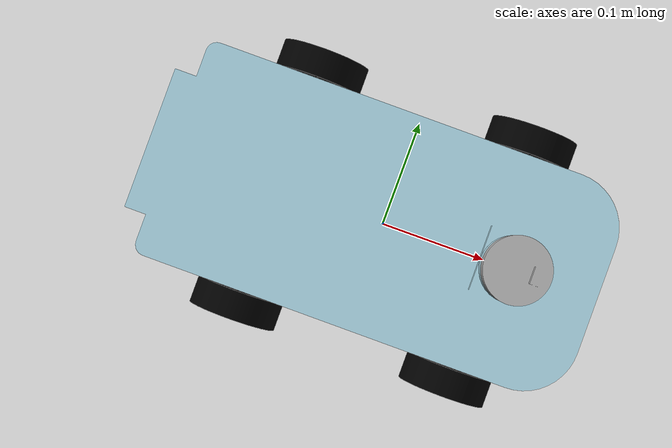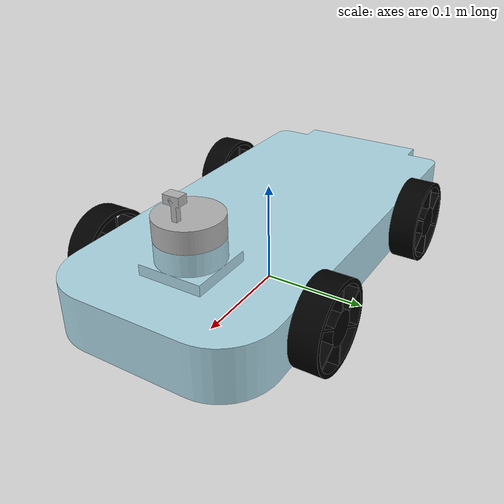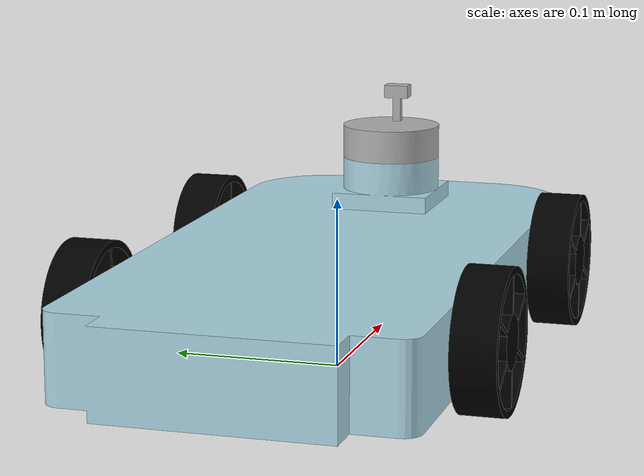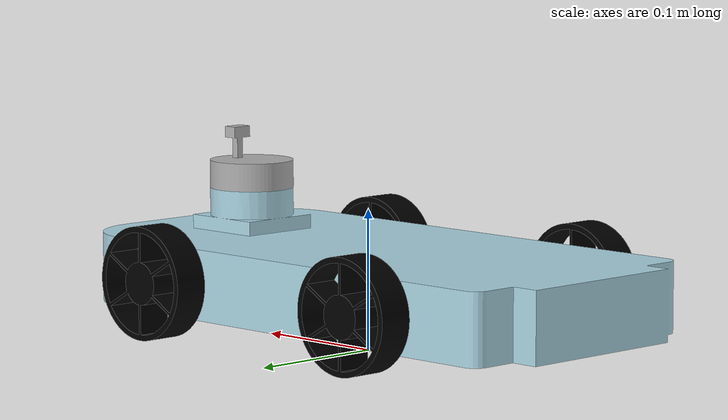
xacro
<?xml version="1.0" ?>
<robot name="SimpleCarRobot" xmlns:xacro="http://www.ros.org/wiki/xacro">

<xacro:include filename="$(find SimpleCarRobot_description)/urdf/materials.xacro" />
<xacro:include filename="$(find SimpleCarRobot_description)/urdf/SimpleCarRobot.trans" />
<xacro:include filename="$(find SimpleCarRobot_description)/urdf/SimpleCarRobot.gazebo" />

<link name="base_link">
  <inertial>
    <origin xyz="-0.006225642035045943 0.0 0.05087125307915337" rpy="0 0 0"/>
    <mass value="4.409937301003005"/>
    <inertia ixx="0.014864" iyy="0.062745" izz="0.075501" ixy="0.0" iyz="0.0" ixz="-0.000485"/>
  </inertial>
  <visual>
    <origin xyz="0 0 0" rpy="0 0 0"/>
    <geometry>
      <mesh filename="package://SimpleCarRobot_description/meshes/base_link.stl" scale="0.001 0.001 0.001"/>
    </geometry>
    <material name="blue"/>
  </visual>
  <collision>
    <origin xyz="0 0 0" rpy="0 0 0"/>
    <geometry>
      <mesh filename="package://SimpleCarRobot_description/meshes/base_link.stl" scale="0.001 0.001 0.001"/>
    </geometry>
  </collision>
</link>

<link name="front_right_wheel_1">
  <inertial>
    <origin xyz="8.326672684688674e-17 -0.014111456121422603 4.163336342344337e-17" rpy="0 0 0"/>
    <mass value="0.04588438904615645"/>
    <inertia ixx="2.2e-05" iyy="3.8e-05" izz="2.2e-05" ixy="-0.0" iyz="-0.0" ixz="-0.0"/>
  </inertial>
  <visual>
    <origin xyz="-0.1 0.098 -0.05" rpy="0 0 0"/>
    <geometry>
      <mesh filename="package://SimpleCarRobot_description/meshes/front_right_wheel_1.stl" scale="0.001 0.001 0.001"/>
    </geometry>
    <material name="black"/>
  </visual>
  <collision>
    <origin xyz="-0.1 0.098 -0.05" rpy="0 0 0"/>
    <geometry>
      <mesh filename="package://SimpleCarRobot_description/meshes/front_right_wheel_1.stl" scale="0.001 0.001 0.001"/>
    </geometry>
  </collision>
</link>

<link name="back_right_wheel_1">
  <inertial>
    <origin xyz="-8.326672684688674e-17 -0.014113126073852914 0.0" rpy="0 0 0"/>
    <mass value="0.045878545683820826"/>
    <inertia ixx="2.2e-05" iyy="3.8e-05" izz="2.2e-05" ixy="0.0" iyz="-0.0" ixz="0.0"/>
  </inertial>
  <visual>
    <origin xyz="0.1 0.098 -0.05" rpy="0 0 0"/>
    <geometry>
      <mesh filename="package://SimpleCarRobot_description/meshes/back_right_wheel_1.stl" scale="0.001 0.001 0.001"/>
    </geometry>
    <material name="black"/>
  </visual>
  <collision>
    <origin xyz="0.1 0.098 -0.05" rpy="0 0 0"/>
    <geometry>
      <mesh filename="package://SimpleCarRobot_description/meshes/back_right_wheel_1.stl" scale="0.001 0.001 0.001"/>
    </geometry>
  </collision>
</link>

<link name="back_left_wheel_1">
  <inertial>
    <origin xyz="0.0 0.014111456121422561 6.245004513516506e-17" rpy="0 0 0"/>
    <mass value="0.045884389046156444"/>
    <inertia ixx="2.2e-05" iyy="3.8e-05" izz="2.2e-05" ixy="0.0" iyz="0.0" ixz="0.0"/>
  </inertial>
  <visual>
    <origin xyz="0.1 -0.098 -0.05" rpy="0 0 0"/>
    <geometry>
      <mesh filename="package://SimpleCarRobot_description/meshes/back_left_wheel_1.stl" scale="0.001 0.001 0.001"/>
    </geometry>
    <material name="black"/>
  </visual>
  <collision>
    <origin xyz="0.1 -0.098 -0.05" rpy="0 0 0"/>
    <geometry>
      <mesh filename="package://SimpleCarRobot_description/meshes/back_left_wheel_1.stl" scale="0.001 0.001 0.001"/>
    </geometry>
  </collision>
</link>

<link name="front_left_wheel_1">
  <inertial>
    <origin xyz="-4.163336342344337e-17 0.014111456121422561 6.938893903907228e-18" rpy="0 0 0"/>
    <mass value="0.04588438904615646"/>
    <inertia ixx="2.2e-05" iyy="3.8e-05" izz="2.2e-05" ixy="0.0" iyz="0.0" ixz="-0.0"/>
  </inertial>
  <visual>
    <origin xyz="-0.1 -0.098 -0.05" rpy="0 0 0"/>
    <geometry>
      <mesh filename="package://SimpleCarRobot_description/meshes/front_left_wheel_1.stl" scale="0.001 0.001 0.001"/>
    </geometry>
    <material name="black"/>
  </visual>
  <collision>
    <origin xyz="-0.1 -0.098 -0.05" rpy="0 0 0"/>
    <geometry>
      <mesh filename="package://SimpleCarRobot_description/meshes/front_left_wheel_1.stl" scale="0.001 0.001 0.001"/>
    </geometry>
  </collision>
</link>

<link name="lidar_1">
  <inertial>
    <origin xyz="0.00039627994015795087 2.544123931108333e-16 0.010696139706805982" rpy="0 0 0"/>
    <mass value="0.06157737068733859"/>
    <inertia ixx="1.7e-05" iyy="1.7e-05" izz="2.7e-05" ixy="-0.0" iyz="-0.0" ixz="-1e-06"/>
  </inertial>
  <visual>
    <origin xyz="-0.12 -0.0 -0.105" rpy="0 0 0"/>
    <geometry>
      <mesh filename="package://SimpleCarRobot_description/meshes/lidar_1.stl" scale="0.001 0.001 0.001"/>
    </geometry>
    <material name="silver"/>
  </visual>
  <collision>
    <origin xyz="-0.12 -0.0 -0.105" rpy="0 0 0"/>
    <geometry>
      <mesh filename="package://SimpleCarRobot_description/meshes/lidar_1.stl" scale="0.001 0.001 0.001"/>
    </geometry>
  </collision>
</link>

<joint name="front_right_wheel_rev" type="continuous">
  <origin xyz="0.1 -0.098 0.05" rpy="0 0 0"/>
  <parent link="base_link"/>
  <child link="front_right_wheel_1"/>
  <axis xyz="0.0 1.0 0.0"/>
</joint>

<joint name="back_right_wheel_rev" type="continuous">
  <origin xyz="-0.1 -0.098 0.05" rpy="0 0 0"/>
  <parent link="base_link"/>
  <child link="back_right_wheel_1"/>
  <axis xyz="0.0 1.0 0.0"/>
</joint>

<joint name="back_left_wheel_rev" type="continuous">
  <origin xyz="-0.1 0.098 0.05" rpy="0 0 0"/>
  <parent link="base_link"/>
  <child link="back_left_wheel_1"/>
  <axis xyz="0.0 1.0 0.0"/>
</joint>

<joint name="front_left_wheel_rev" type="continuous">
  <origin xyz="0.1 0.098 0.05" rpy="0 0 0"/>
  <parent link="base_link"/>
  <child link="front_left_wheel_1"/>
  <axis xyz="0.0 1.0 0.0"/>
</joint>

<joint name="lidar_rev" type="fixed">
  <origin xyz="0.12 0.0 0.105" rpy="0 0 0"/>
  <parent link="base_link"/>
  <child link="lidar_1"/>
</joint>

</robot>

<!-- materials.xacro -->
<robot name="SimpleCarRobot" xmlns:xacro="http://www.ros.org/wiki/xacro" >

  <material name="silver">
    <color rgba="0.700 0.700 0.700 1.000" />
  </material>
  <material name="red">
    <color rgba="1.000 0.000 0.000 1.000" />
  </material>
  <material name="blue">
    <color rgba="0.678 0.847 0.902 1.000" />
  </material>
  <material name="green">
    <color rgba="0.000 1.000 0.000 1.000" />
  </material>
  <material name="yellow">
    <color rgba="1.000 1.000 0.000 1.000" />
  </material>
  <material name="orange">
    <color rgba="1.000 0.647 0.000 1.000" />
  </material>
  <material name="purple">
    <color rgba="0.502 0.000 0.502 1.000" />
  </material>
  <material name="pink">
    <color rgba="1.000 0.753 0.796 1.000" />
  </material>
  <material name="cyan">
    <color rgba="0.000 1.000 1.000 1.000" />
  </material>
  <material name="brown">
    <color rgba="0.647 0.165 0.165 1.000" />
  </material>
  <material name="black">
    <color rgba="0.000 0.000 0.000 1.000" />
  </material>

</robot>

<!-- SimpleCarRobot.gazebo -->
<robot name="SimpleCarRobot" xmlns:xacro="http://www.ros.org/wiki/xacro" >

  <xacro:property name="body_color" value="Gazebo/Turquoise" />
  <xacro:property name="lidar_color" value="Gazebo/DarkGrey" />
  <xacro:property name="wheel_color" value="Gazebo/Black" />

<gazebo>
    <plugin name="control" filename="libgazebo_ros_control.so" />
</gazebo>

<gazebo reference="base_link">
  <material>${body_color}</material>
  <mu1>0.2</mu1>
  <mu2>0.2</mu2>
  <selfCollide>true</selfCollide>
  <gravity>true</gravity>
</gazebo>

<gazebo reference="front_right_wheel_1">
  <material>${wheel_color}</material>
  <mu1>0.5</mu1>
  <mu2>0.5</mu2>
  <selfCollide>true</selfCollide>
</gazebo>

<gazebo reference="back_right_wheel_1">
  <material>${wheel_color}</material>
  <mu1>1500</mu1>
  <mu2>1500</mu2>
  <selfCollide>true</selfCollide>
</gazebo>

<gazebo reference="back_left_wheel_1">
  <material>${wheel_color}</material>
  <mu1>1500</mu1>
  <mu2>1500</mu2>
  <selfCollide>true</selfCollide>
</gazebo>

<gazebo reference="front_left_wheel_1">
  <material>${wheel_color}</material>
  <mu1>0.5</mu1>
  <mu2>0.5</mu2>
  <selfCollide>true</selfCollide>
</gazebo>

<gazebo reference="lidar_1">
  <material>${lidar_color}</material>
  <mu1>99999</mu1>
  <mu2>99999</mu2>
  <selfCollide>true</selfCollide>
</gazebo>

<gazebo>
  <plugin name="differential_drive_controller" filename="libgazebo_ros_diff_drive.so">

    <!-- Plugin update rate in Hz -->
    <updateRate>100</updateRate>

    <!-- Name of left joint, defaults to `left_joint` -->
    <leftJoint>back_left_wheel_rev</leftJoint>

    <!-- Name of right joint, defaults to `right_joint` -->
    <rightJoint>back_right_wheel_rev</rightJoint>

    <!-- The distance from the center of one wheel to the other, in meters, defaults to 0.34 m -->
    <wheelSeparation>0.225</wheelSeparation>

    <!-- Diameter of the wheels, in meters, defaults to 0.15 m -->
    <wheelDiameter>0.08</wheelDiameter>

    <!-- Wheel acceleration, in rad/s^2, defaults to 0.0 rad/s^2 -->
    <wheelAcceleration>2.0</wheelAcceleration>

    <!-- Maximum torque which the wheels can produce, in Nm, defaults to 5 Nm -->
    <wheelTorque>50</wheelTorque>

    <!-- Topic to receive geometry_msgs/Twist message commands, defaults to `cmd_vel` -->
    <commandTopic>cmd_vel</commandTopic>

    <!-- Topic to publish nav_msgs/Odometry messages, defaults to `odom` -->
    <odometryTopic>odom</odometryTopic>

    <!-- Odometry frame, defaults to `odom` -->
    <odometryFrame>odom</odometryFrame>

    <!-- Robot frame to calculate odometry from, defaults to `base_footprint` -->
    <robotBaseFrame>base_link</robotBaseFrame>

    <!-- Odometry source, 0 for ENCODER, 1 for WORLD, defaults to WORLD -->
    <odometrySource>1</odometrySource>

    <!-- Set to true to publish transforms for the wheel links, defaults to false -->
    <publishWheelTF>false</publishWheelTF>

    <!-- Set to true to publish transforms for the odometry, defaults to true -->
    <publishOdom>true</publishOdom>

    <!-- Set to true to publish sensor_msgs/JointState on /joint_states for the wheel joints,
    defaults to false -->
    <publishWheelJointState>false</publishWheelJointState>

    <!-- Set to true to swap right and left wheels, defaults to true -->
    <legacyMode>false</legacyMode>
  </plugin>
</gazebo>

<!-- hokuyo -->
<gazebo reference="lidar_1">
  <sensor type="ray" name="head_hokuyo_sensor">
    <pose>0 0 0 0 0 0</pose>
    <visualize>true</visualize>
    <update_rate>40</update_rate>
    <ray>
      <scan>
        <horizontal>
          <samples>720</samples>
          <resolution>1</resolution>
          <min_angle>-1.570796</min_angle>
          <max_angle>1.570796</max_angle>
        </horizontal>
      </scan>
      <range>
        <min>0.10</min>
        <max>30.0</max>
        <resolution>0.01</resolution>
      </range>
      <noise>
        <type>gaussian</type>
        <mean>0.0</mean>
        <stddev>0.01</stddev>
      </noise>
    </ray>
    <plugin name="gazebo_ros_head_hokuyo_controller" filename="libgazebo_ros_laser.so">
      <topicName>/scan</topicName>
      <frameName>lidar_1</frameName>
    </plugin>
  </sensor>
</gazebo>

</robot>
